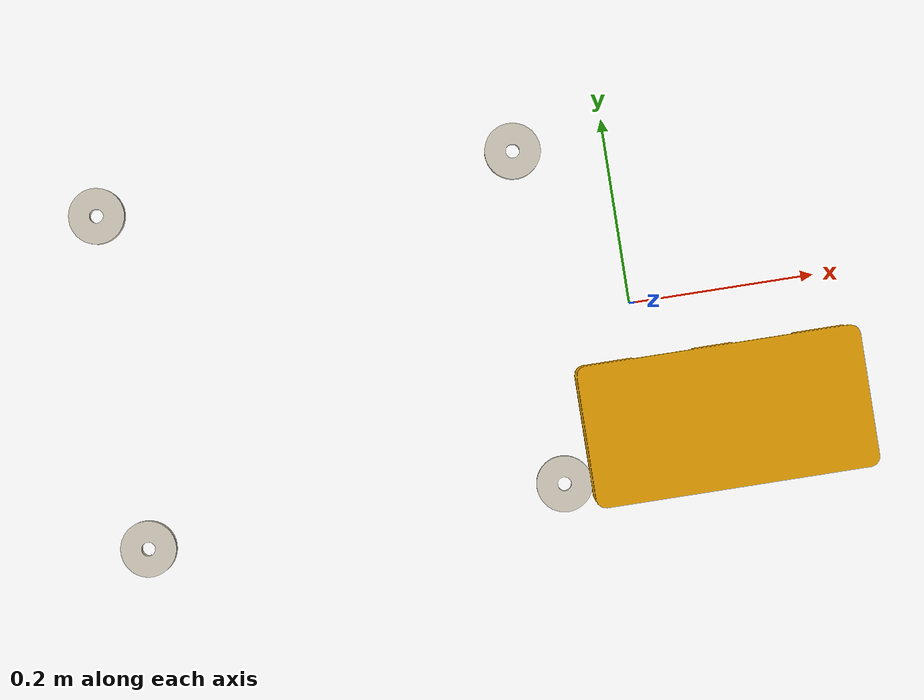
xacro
<?xml version="1.0" encoding="utf-8"?>
<robot name="robot" xmlns:xacro="http://www.ros.org/wiki/xacro">

<xacro:include filename="$(find robot)/xacro/transmission_xArm.xacro" />
  <link
    name="base_link">
    <inertial>
      <origin
        xyz="-0.350817488517824 -5.55111512312578E-17 0.085189956317522"
        rpy="0 0 0" />
      <mass value="39.1290758905039" />
      <inertia
        ixx="0.57820270304639"
        ixy="5.50155675767055E-17"
        ixz="0.0411160711805077"
        iyy="1.24922666790371"
        iyz="2.87867261314556E-17"
        izz="1.60162243877756" />
    </inertial>
    <visual>
      <origin
        xyz="0 0 0"
        rpy="0 0 0" />
      <geometry>
        <mesh
          filename="package://robot/meshes/base_link.STL" />
      </geometry>
    </visual>
    <collision>
      <origin
        xyz="0 0 0"
        rpy="0 0 0" />
      <geometry>
        <mesh
          filename="package://robot/meshes/base_link.STL" />
      </geometry>
    </collision>
  </link>
  <link
    name="wheel1">
    <inertial>
      <origin
        xyz="1.84071646813777E-11 -0.0798978308085576 -1.84123272184422E-11"
        rpy="0 0 0" />
      <mass
        value="2.8181635923232" />
      <inertia
        ixx="0.00910838466103365"
        ixy="7.45691668896085E-13"
        ixz="6.4447164477413E-16"
        iyy="0.0141617550665306"
        iyz="-2.97733458732594E-13"
        izz="0.00910838466103446" />
    </inertial>
    <visual>
      <origin
        xyz="0 0 0"
        rpy="0 0 0" />
      <geometry>
        <mesh
          filename="package://robot/meshes/wheel1.STL" />
      </geometry>
      <material
        name="">
        <color
          rgba="0.843137254901961 0.815686274509804 0.752941176470588 1" />
      </material>
    </visual>
    <collision>
      <origin
        xyz="0 0 0"
        rpy="0 0 0" />
      <geometry>
        <mesh
          filename="package://robot/meshes/wheel1.STL" />
      </geometry>
    </collision>
  </link>
  <joint
    name="fr_joint"
    type="continuous">
    <origin
      xyz="-0.1 -0.18 0.0250000000000001"
      rpy="0 0 0" />
    <parent
      link="base_link" />
    <child
      link="wheel1" />
    <axis
      xyz="0 1 0" />
  </joint>
  <link
    name="wheel2">
    <inertial>
      <origin
        xyz="-3.19103285462141E-11 0.0798978308085577 1.3225975870057E-11"
        rpy="0 0 0" />
      <mass
        value="2.81816359232321" />
      <inertia
        ixx="0.00910838466103428"
        ixy="7.43290915100517E-13"
        ixz="1.30281564358401E-15"
        iyy="0.0141617550665316"
        iyz="-7.63146339114582E-13"
        izz="0.00910838466103485" />
    </inertial>
    <visual>
      <origin
        xyz="0 0 0"
        rpy="0 0 0" />
      <geometry>
        <mesh
          filename="package://robot/meshes/wheel2.STL" />
      </geometry>
      <material
        name="">
        <color
          rgba="0.843137254901961 0.815686274509804 0.752941176470588 1" />
      </material>
    </visual>
    <collision>
      <origin
        xyz="0 0 0"
        rpy="0 0 0" />
      <geometry>
        <mesh
          filename="package://robot/meshes/wheel2.STL" />
      </geometry>
    </collision>
  </link>
  <joint
    name="fl_joint"
    type="continuous">
    <origin
      xyz="-0.1 0.18 0.0249999999999999"
      rpy="0 0 0" />
    <parent
      link="base_link" />
    <child
      link="wheel2" />
    <axis
      xyz="0 1 0" />
  </joint>
  <link
    name="wheel3">
    <inertial>
      <origin
        xyz="-2.70886091335854E-11 -0.0798978308085576 -1.54760093629136E-11"
        rpy="0 0 0" />
      <mass
        value="2.81816359232321" />
      <inertia
        ixx="0.00910838466103435"
        ixy="-5.79266533676345E-13"
        ixz="-1.08769322282951E-15"
        iyy="0.0141617550665311"
        iyz="-7.68222231200298E-13"
        izz="0.00910838466103429" />
    </inertial>
    <visual>
      <origin
        xyz="0 0 0"
        rpy="0 0 0" />
      <geometry>
        <mesh
          filename="package://robot/meshes/wheel3.STL" />
      </geometry>
      <material
        name="">
        <color
          rgba="0.843137254901961 0.815686274509804 0.752941176470588 1" />
      </material>
    </visual>
    <collision>
      <origin
        xyz="0 0 0"
        rpy="0 0 0" />
      <geometry>
        <mesh
          filename="package://robot/meshes/wheel3.STL" />
      </geometry>
    </collision>
  </link>
  <joint
    name="rr_joint"
    type="continuous">
    <origin
      xyz="-0.55 -0.18 0.025"
      rpy="0 0 0" />
    <parent
      link="base_link" />
    <child
      link="wheel3" />
    <axis
      xyz="0 1 0" />
  </joint>
  <link
    name="wheel4">
    <inertial>
      <origin
        xyz="3.85323994933628E-11 0.0798978308085575 -9.15667541789844E-12"
        rpy="0 0 0" />
      <mass
        value="2.81816359232319" />
      <inertia
        ixx="0.00910838466103397"
        ixy="-9.80464853400056E-13"
        ixz="1.50063397987546E-15"
        iyy="0.0141617550665322"
        iyz="7.28431217376692E-13"
        izz="0.00910838466103579" />
    </inertial>
    <visual>
      <origin
        xyz="0 0 0"
        rpy="0 0 0" />
      <geometry>
        <mesh
          filename="package://robot/meshes/wheel4.STL" />
      </geometry>
      <material
        name="">
        <color
          rgba="0.843137254901961 0.815686274509804 0.752941176470588 1" />
      </material>
    </visual>
    <collision>
      <origin
        xyz="0 0 0"
        rpy="0 0 0" />
      <geometry>
        <mesh
          filename="package://robot/meshes/wheel4.STL" />
      </geometry>
    </collision>
  </link>
  <joint
    name="rl_joint"
    type="continuous">
    <origin
      xyz="-0.55 0.18 0.0250000000000001"
      rpy="0 0 0" />
    <parent
      link="base_link" />
    <child
      link="wheel4" />
    <axis
      xyz="0 1 0" />
  </joint>

</robot>
